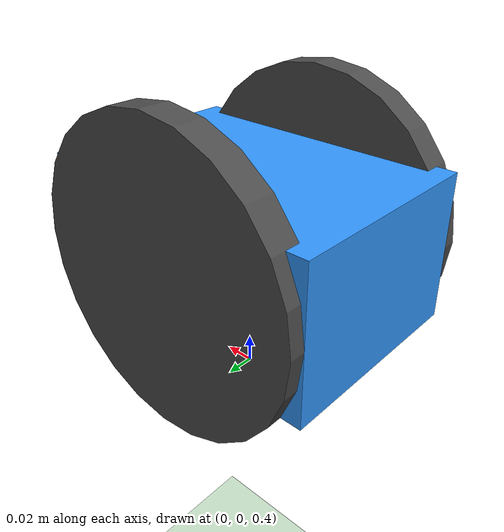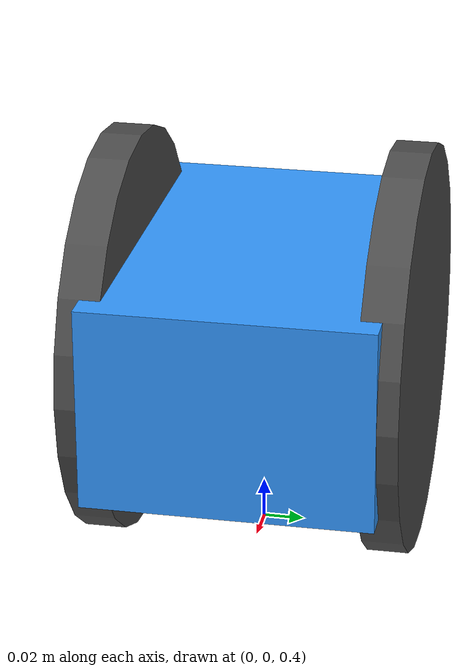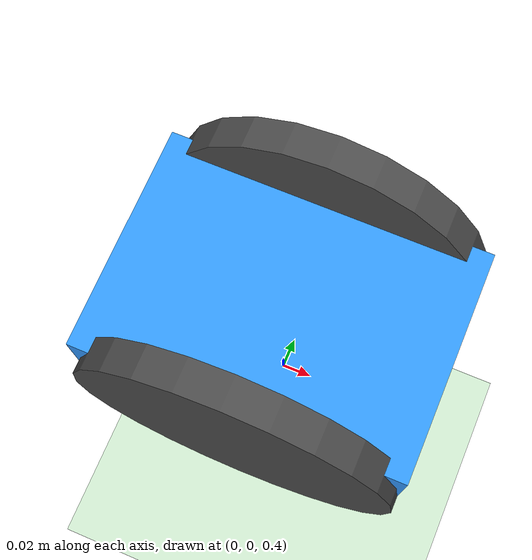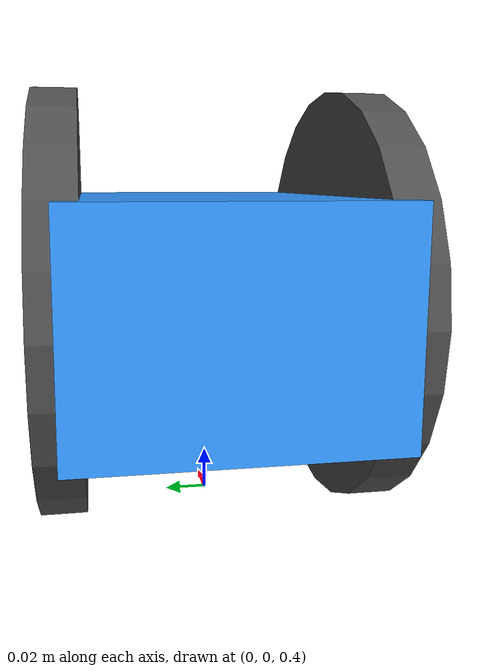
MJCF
<?xml version="1.0" encoding="utf-8"?>
<mujoco model="simple_wheeled_robot">
  <!-- Настройки -->
  <option timestep="0.0001" integrator="RK4" cone="elliptic"/>
  <option gravity="0 0 -9.81"/>

  <!-- Статистика -->
  <statistic center="0 0 0.5" extent="2"/>

  <!-- Мир -->
  <worldbody>
    <!-- Пол -->
    <light name="top" pos="0 0 3" dir="0 0 -1" directional="true"/>
    <geom name="floor" type="plane" size="10 10 0.1" rgba="0.8 0.9 0.8 1" friction="1 0.005 0.0001"/>

    <!-- Робот с колесами, прикрепленными непосредственно к корпусу -->
    <body name="robot" pos="0 0 0.5">
      <freejoint name="root"/>

      <!-- Корпус (20x14x10 см, 0.7 кг) - Z позиция = 0 -->
      <geom name="torso_geom" type="box" size="0.1 0.07 0.05" pos="0 0 0" mass="0.7" rgba="0.2 0.6 1 1"/>

      <!-- Левое колесо - соприкасается с корпусом -->
      <body name="left_wheel" pos="0 0.07 0">  <!-- Y=0.07 (ширина корпуса 0.07), Z=0 (такая же высота) -->
        <joint name="left_wheel_joint" type="hinge" axis="0 1 0" pos="0 0 0" limited="false"/>
        <geom name="left_wheel_geom" type="cylinder" size="0.1 0.01"
              euler="90 0 0" mass="0.3" rgba="0.3 0.3 0.3 1"/>
      </body>

      <!-- Правое колесо - соприкасается с корпусом -->
      <body name="right_wheel" pos="0 -0.07 0">  <!-- Y=-0.07 (ширина корпуса 0.07), Z=0 (такая же высота) -->
        <joint name="right_wheel_joint" type="hinge" axis="0 1 0" pos="0 0 0" limited="false"/>
        <geom name="right_wheel_geom" type="cylinder" size="0.1 0.01"
              euler="90 0 0" mass="0.3" rgba="0.3 0.3 0.3 1"/>
      </body>
    </body>
  </worldbody>

  <!-- Приводы -->
  <actuator>
    <!-- Двигатели колес -->
    <motor name="left_wheel_motor" joint="left_wheel_joint" gear="50" ctrllimited="true" ctrlrange="-100 100"/>
    <motor name="right_wheel_motor" joint="right_wheel_joint" gear="50" ctrllimited="true" ctrlrange="-100 100"/>
  </actuator>

  <!-- Датчики -->
  <sensor>
    <!-- Позиция и ориентация корпуса -->
    <framepos name="robot_pos" objtype="body" objname="robot"/>
    <framequat name="robot_quat" objtype="body" objname="robot"/>

    <!-- Скорость колес -->
    <jointvel name="left_wheel_vel" joint="left_wheel_joint"/>
    <jointvel name="right_wheel_vel" joint="right_wheel_joint"/>
  </sensor>
</mujoco>
